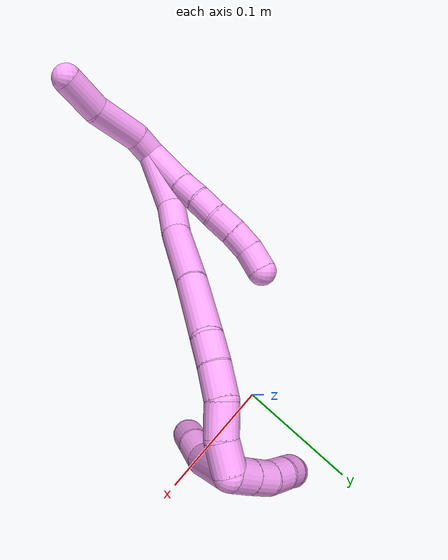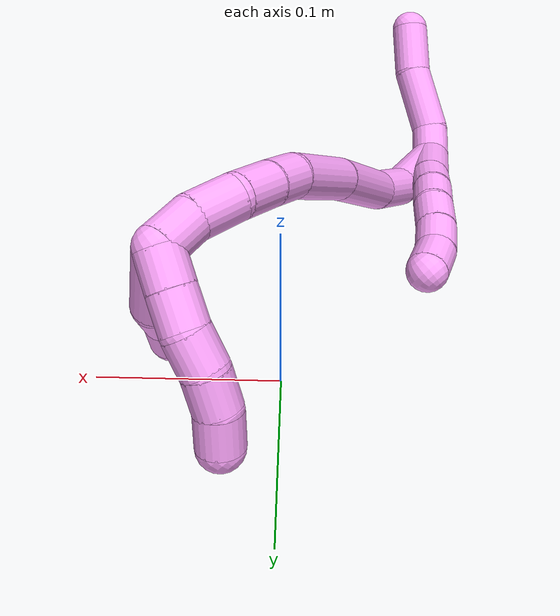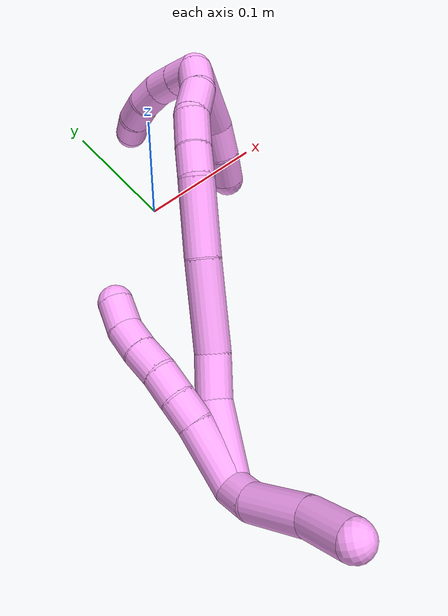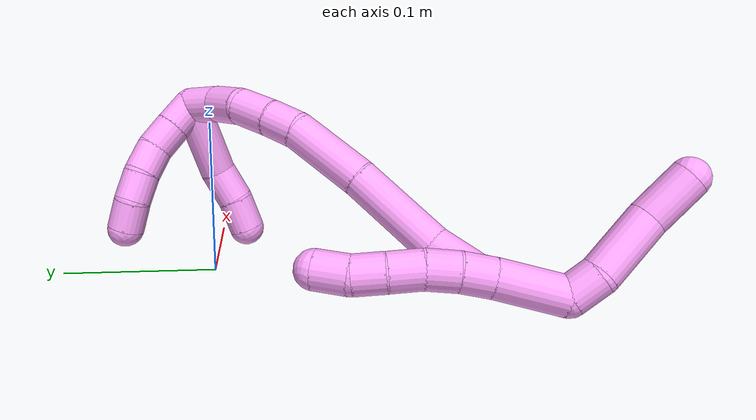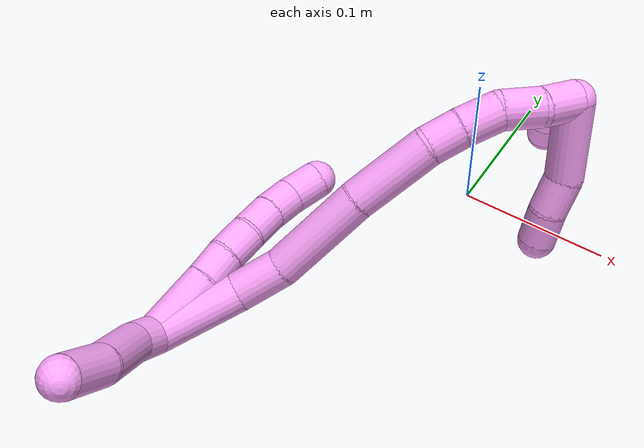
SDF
<sdf version="1.7">
 <world name="default">
  <model name="4">
   <static>0</static>
   <link name="4">
    <collision name="collision-cylinder-e_1_2_8">
     <pose>0.00853 0.019481 -0.007025 -1.9169 0.390709 -0.549188</pose>
     <geometry><cylinder><radius>0.0125</radius><length>0.044793</length></cylinder></geometry>
     <surface>
      <friction><ode><mu>1.16</mu><mu2>1.16</mu2><slip1>0</slip1><slip2>0</slip2></ode></friction>
      <contact><ode><kp>1e+06</kp><kd>1</kd><max_vel>0</max_vel><min_depth>0.001</min_depth></ode></contact>
     </surface>
    </collision>
    <visual name="visual-cylinder-e_1_2_8">
     <pose>0.00853 0.019481 -0.007025 -1.9169 0.390709 -0.549188</pose>
     <geometry><cylinder><radius>0.0125</radius><length>0.044793</length></cylinder></geometry>
     <material><ambient>1 0.65098 0.996078 1</ambient></material>
    </visual>
    <collision name="collision-cylinder-e_2_8_9">
     <pose>0.020588 0.047546 -0.018072 -2.00894 0.356377 -0.552068</pose>
     <geometry><cylinder><radius>0.0125</radius><length>0.02023</length></cylinder></geometry>
     <surface>
      <friction><ode><mu>1.16</mu><mu2>1.16</mu2><slip1>0</slip1><slip2>0</slip2></ode></friction>
      <contact><ode><kp>1e+06</kp><kd>1</kd><max_vel>0</max_vel><min_depth>0.001</min_depth></ode></contact>
     </surface>
    </collision>
    <visual name="visual-cylinder-e_2_8_9">
     <pose>0.020588 0.047546 -0.018072 -2.00894 0.356377 -0.552068</pose>
     <geometry><cylinder><radius>0.0125</radius><length>0.02023</length></cylinder></geometry>
     <material><ambient>1 0.65098 0.996078 1</ambient></material>
    </visual>
    <collision name="collision-cylinder-e_3_9_10">
     <pose>0.02866 0.064155 -0.0267 -2.09181 0.456402 -0.762845</pose>
     <geometry><cylinder><radius>0.0125</radius><length>0.020616</length></cylinder></geometry>
     <surface>
      <friction><ode><mu>1.16</mu><mu2>1.16</mu2><slip1>0</slip1><slip2>0</slip2></ode></friction>
      <contact><ode><kp>1e+06</kp><kd>1</kd><max_vel>0</max_vel><min_depth>0.001</min_depth></ode></contact>
     </surface>
    </collision>
    <visual name="visual-cylinder-e_3_9_10">
     <pose>0.02866 0.064155 -0.0267 -2.09181 0.456402 -0.762845</pose>
     <geometry><cylinder><radius>0.0125</radius><length>0.020616</length></cylinder></geometry>
     <material><ambient>1 0.65098 0.996078 1</ambient></material>
    </visual>
    <collision name="collision-cylinder-e_4_10_11">
     <pose>0.038178 0.079528 -0.037457 -2.26775 0.478846 -0.963257</pose>
     <geometry><cylinder><radius>0.0125</radius><length>0.021595</length></cylinder></geometry>
     <surface>
      <friction><ode><mu>1.16</mu><mu2>1.16</mu2><slip1>0</slip1><slip2>0</slip2></ode></friction>
      <contact><ode><kp>1e+06</kp><kd>1</kd><max_vel>0</max_vel><min_depth>0.001</min_depth></ode></contact>
     </surface>
    </collision>
    <visual name="visual-cylinder-e_4_10_11">
     <pose>0.038178 0.079528 -0.037457 -2.26775 0.478846 -0.963257</pose>
     <geometry><cylinder><radius>0.0125</radius><length>0.021595</length></cylinder></geometry>
     <material><ambient>1 0.65098 0.996078 1</ambient></material>
    </visual>
    <collision name="collision-cylinder-e_5_11_12">
     <pose>0.048782 0.09369 -0.048889 -2.23025 0.578439 -1.09137</pose>
     <geometry><cylinder><radius>0.0125</radius><length>0.02059</length></cylinder></geometry>
     <surface>
      <friction><ode><mu>1.16</mu><mu2>1.16</mu2><slip1>0</slip1><slip2>0</slip2></ode></friction>
      <contact><ode><kp>1e+06</kp><kd>1</kd><max_vel>0</max_vel><min_depth>0.001</min_depth></ode></contact>
     </surface>
    </collision>
    <visual name="visual-cylinder-e_5_11_12">
     <pose>0.048782 0.09369 -0.048889 -2.23025 0.578439 -1.09137</pose>
     <geometry><cylinder><radius>0.0125</radius><length>0.02059</length></cylinder></geometry>
     <material><ambient>1 0.65098 0.996078 1</ambient></material>
    </visual>
    <collision name="collision-cylinder-e_6_12_6">
     <pose>0.061118 0.108848 -0.05705 -1.90304 0.649804 -0.882885</pose>
     <geometry><cylinder><radius>0.0125</radius><length>0.022176</length></cylinder></geometry>
     <surface>
      <friction><ode><mu>1.16</mu><mu2>1.16</mu2><slip1>0</slip1><slip2>0</slip2></ode></friction>
      <contact><ode><kp>1e+06</kp><kd>1</kd><max_vel>0</max_vel><min_depth>0.001</min_depth></ode></contact>
     </surface>
    </collision>
    <visual name="visual-cylinder-e_6_12_6">
     <pose>0.061118 0.108848 -0.05705 -1.90304 0.649804 -0.882885</pose>
     <geometry><cylinder><radius>0.0125</radius><length>0.022176</length></cylinder></geometry>
     <material><ambient>1 0.65098 0.996078 1</ambient></material>
    </visual>
    <collision name="collision-cylinder-e_1_2_13">
     <pose>-0.006725 -0.001864 0.008014 0.228531 -0.685218 -0.081822</pose>
     <geometry><cylinder><radius>0.0125</radius><length>0.021254</length></cylinder></geometry>
     <surface>
      <friction><ode><mu>1.16</mu><mu2>1.16</mu2><slip1>0</slip1><slip2>0</slip2></ode></friction>
      <contact><ode><kp>1e+06</kp><kd>1</kd><max_vel>0</max_vel><min_depth>0.001</min_depth></ode></contact>
     </surface>
    </collision>
    <visual name="visual-cylinder-e_1_2_13">
     <pose>-0.006725 -0.001864 0.008014 0.228531 -0.685218 -0.081822</pose>
     <geometry><cylinder><radius>0.0125</radius><length>0.021254</length></cylinder></geometry>
     <material><ambient>1 0.65098 0.996078 1</ambient></material>
    </visual>
    <collision name="collision-cylinder-e_2_13_14">
     <pose>-0.022684 -0.004671 0.036239 0.046617 -0.42814 -0.010136</pose>
     <geometry><cylinder><radius>0.0125</radius><length>0.04448</length></cylinder></geometry>
     <surface>
      <friction><ode><mu>1.16</mu><mu2>1.16</mu2><slip1>0</slip1><slip2>0</slip2></ode></friction>
      <contact><ode><kp>1e+06</kp><kd>1</kd><max_vel>0</max_vel><min_depth>0.001</min_depth></ode></contact>
     </surface>
    </collision>
    <visual name="visual-cylinder-e_2_13_14">
     <pose>-0.022684 -0.004671 0.036239 0.046617 -0.42814 -0.010136</pose>
     <geometry><cylinder><radius>0.0125</radius><length>0.04448</length></cylinder></geometry>
     <material><ambient>1 0.65098 0.996078 1</ambient></material>
    </visual>
    <collision name="collision-cylinder-e_3_14_5">
     <pose>-0.042203 -0.006354 0.070132 0.054046 -0.64393 -0.018032</pose>
     <geometry><cylinder><radius>0.0125</radius><length>0.034266</length></cylinder></geometry>
     <surface>
      <friction><ode><mu>1.16</mu><mu2>1.16</mu2><slip1>0</slip1><slip2>0</slip2></ode></friction>
      <contact><ode><kp>1e+06</kp><kd>1</kd><max_vel>0</max_vel><min_depth>0.001</min_depth></ode></contact>
     </surface>
    </collision>
    <visual name="visual-cylinder-e_3_14_5">
     <pose>-0.042203 -0.006354 0.070132 0.054046 -0.64393 -0.018032</pose>
     <geometry><cylinder><radius>0.0125</radius><length>0.034266</length></cylinder></geometry>
     <material><ambient>1 0.65098 0.996078 1</ambient></material>
    </visual>
    <collision name="collision-cylinder-e_1_2_15">
     <pose>0.018362 0.020421 -0.002941 -1.71382 0.727236 -0.827785</pose>
     <geometry><cylinder><radius>0.0125</radius><length>0.055239</length></cylinder></geometry>
     <surface>
      <friction><ode><mu>1.16</mu><mu2>1.16</mu2><slip1>0</slip1><slip2>0</slip2></ode></friction>
      <contact><ode><kp>1e+06</kp><kd>1</kd><max_vel>0</max_vel><min_depth>0.001</min_depth></ode></contact>
     </surface>
    </collision>
    <visual name="visual-cylinder-e_1_2_15">
     <pose>0.018362 0.020421 -0.002941 -1.71382 0.727236 -0.827785</pose>
     <geometry><cylinder><radius>0.0125</radius><length>0.055239</length></cylinder></geometry>
     <material><ambient>1 0.65098 0.996078 1</ambient></material>
    </visual>
    <collision name="collision-cylinder-e_2_15_16">
     <pose>0.045155 0.054078 -0.003023 -1.35805 0.556942 -0.453532</pose>
     <geometry><cylinder><radius>0.0125</radius><length>0.031902</length></cylinder></geometry>
     <surface>
      <friction><ode><mu>1.16</mu><mu2>1.16</mu2><slip1>0</slip1><slip2>0</slip2></ode></friction>
      <contact><ode><kp>1e+06</kp><kd>1</kd><max_vel>0</max_vel><min_depth>0.001</min_depth></ode></contact>
     </surface>
    </collision>
    <visual name="visual-cylinder-e_2_15_16">
     <pose>0.045155 0.054078 -0.003023 -1.35805 0.556942 -0.453532</pose>
     <geometry><cylinder><radius>0.0125</radius><length>0.031902</length></cylinder></geometry>
     <material><ambient>1 0.65098 0.996078 1</ambient></material>
    </visual>
    <collision name="collision-cylinder-e_3_16_17">
     <pose>0.063574 0.096447 0.006567 -1.34376 0.32238 -0.257212</pose>
     <geometry><cylinder><radius>0.0125</radius><length>0.063051</length></cylinder></geometry>
     <surface>
      <friction><ode><mu>1.16</mu><mu2>1.16</mu2><slip1>0</slip1><slip2>0</slip2></ode></friction>
      <contact><ode><kp>1e+06</kp><kd>1</kd><max_vel>0</max_vel><min_depth>0.001</min_depth></ode></contact>
     </surface>
    </collision>
    <visual name="visual-cylinder-e_3_16_17">
     <pose>0.063574 0.096447 0.006567 -1.34376 0.32238 -0.257212</pose>
     <geometry><cylinder><radius>0.0125</radius><length>0.063051</length></cylinder></geometry>
     <material><ambient>1 0.65098 0.996078 1</ambient></material>
    </visual>
    <collision name="collision-cylinder-e_4_17_18">
     <pose>0.084428 0.149228 0.018316 -1.36163 0.422419 -0.343915</pose>
     <geometry><cylinder><radius>0.0125</radius><length>0.053006</length></cylinder></geometry>
     <surface>
      <friction><ode><mu>1.16</mu><mu2>1.16</mu2><slip1>0</slip1><slip2>0</slip2></ode></friction>
      <contact><ode><kp>1e+06</kp><kd>1</kd><max_vel>0</max_vel><min_depth>0.001</min_depth></ode></contact>
     </surface>
    </collision>
    <visual name="visual-cylinder-e_4_17_18">
     <pose>0.084428 0.149228 0.018316 -1.36163 0.422419 -0.343915</pose>
     <geometry><cylinder><radius>0.0125</radius><length>0.053006</length></cylinder></geometry>
     <material><ambient>1 0.65098 0.996078 1</ambient></material>
    </visual>
    <collision name="collision-cylinder-e_5_18_19">
     <pose>0.101738 0.181714 0.02414 -1.4801 0.627996 -0.576575</pose>
     <geometry><cylinder><radius>0.0125</radius><length>0.021938</length></cylinder></geometry>
     <surface>
      <friction><ode><mu>1.16</mu><mu2>1.16</mu2><slip1>0</slip1><slip2>0</slip2></ode></friction>
      <contact><ode><kp>1e+06</kp><kd>1</kd><max_vel>0</max_vel><min_depth>0.001</min_depth></ode></contact>
     </surface>
    </collision>
    <visual name="visual-cylinder-e_5_18_19">
     <pose>0.101738 0.181714 0.02414 -1.4801 0.627996 -0.576575</pose>
     <geometry><cylinder><radius>0.0125</radius><length>0.021938</length></cylinder></geometry>
     <material><ambient>1 0.65098 0.996078 1</ambient></material>
    </visual>
    <collision name="collision-cylinder-e_6_19_20">
     <pose>0.116521 0.200245 0.025874 -1.47504 0.708243 -0.648111</pose>
     <geometry><cylinder><radius>0.0125</radius><length>0.025637</length></cylinder></geometry>
     <surface>
      <friction><ode><mu>1.16</mu><mu2>1.16</mu2><slip1>0</slip1><slip2>0</slip2></ode></friction>
      <contact><ode><kp>1e+06</kp><kd>1</kd><max_vel>0</max_vel><min_depth>0.001</min_depth></ode></contact>
     </surface>
    </collision>
    <visual name="visual-cylinder-e_6_19_20">
     <pose>0.116521 0.200245 0.025874 -1.47504 0.708243 -0.648111</pose>
     <geometry><cylinder><radius>0.0125</radius><length>0.025637</length></cylinder></geometry>
     <material><ambient>1 0.65098 0.996078 1</ambient></material>
    </visual>
    <collision name="collision-cylinder-e_7_20_21">
     <pose>0.135951 0.216258 0.02837 -1.32816 1.03981 -0.84242</pose>
     <geometry><cylinder><radius>0.0125</radius><length>0.025726</length></cylinder></geometry>
     <surface>
      <friction><ode><mu>1.16</mu><mu2>1.16</mu2><slip1>0</slip1><slip2>0</slip2></ode></friction>
      <contact><ode><kp>1e+06</kp><kd>1</kd><max_vel>0</max_vel><min_depth>0.001</min_depth></ode></contact>
     </surface>
    </collision>
    <visual name="visual-cylinder-e_7_20_21">
     <pose>0.135951 0.216258 0.02837 -1.32816 1.03981 -0.84242</pose>
     <geometry><cylinder><radius>0.0125</radius><length>0.025726</length></cylinder></geometry>
     <material><ambient>1 0.65098 0.996078 1</ambient></material>
    </visual>
    <collision name="collision-cylinder-e_8_21_1">
     <pose>0.156734 0.228992 0.028185 -1.83724 0.969762 -1.20782</pose>
     <geometry><cylinder><radius>0.0125</radius><length>0.023502</length></cylinder></geometry>
     <surface>
      <friction><ode><mu>1.16</mu><mu2>1.16</mu2><slip1>0</slip1><slip2>0</slip2></ode></friction>
      <contact><ode><kp>1e+06</kp><kd>1</kd><max_vel>0</max_vel><min_depth>0.001</min_depth></ode></contact>
     </surface>
    </collision>
    <visual name="visual-cylinder-e_8_21_1">
     <pose>0.156734 0.228992 0.028185 -1.83724 0.969762 -1.20782</pose>
     <geometry><cylinder><radius>0.0125</radius><length>0.023502</length></cylinder></geometry>
     <material><ambient>1 0.65098 0.996078 1</ambient></material>
    </visual>
    <collision name="collision-cylinder-e_1_1_22">
     <pose>0.178684 0.212995 0.020552 1.82761 0.48668 0.6228</pose>
     <geometry><cylinder><radius>0.0125</radius><length>0.05242</length></cylinder></geometry>
     <surface>
      <friction><ode><mu>1.16</mu><mu2>1.16</mu2><slip1>0</slip1><slip2>0</slip2></ode></friction>
      <contact><ode><kp>1e+06</kp><kd>1</kd><max_vel>0</max_vel><min_depth>0.001</min_depth></ode></contact>
     </surface>
    </collision>
    <visual name="visual-cylinder-e_1_1_22">
     <pose>0.178684 0.212995 0.020552 1.82761 0.48668 0.6228</pose>
     <geometry><cylinder><radius>0.0125</radius><length>0.05242</length></cylinder></geometry>
     <material><ambient>1 0.65098 0.996078 1</ambient></material>
    </visual>
    <collision name="collision-cylinder-e_2_22_23">
     <pose>0.19295 0.178926 0.011656 1.82346 0.165181 0.212923</pose>
     <geometry><cylinder><radius>0.0125</radius><length>0.024421</length></cylinder></geometry>
     <surface>
      <friction><ode><mu>1.16</mu><mu2>1.16</mu2><slip1>0</slip1><slip2>0</slip2></ode></friction>
      <contact><ode><kp>1e+06</kp><kd>1</kd><max_vel>0</max_vel><min_depth>0.001</min_depth></ode></contact>
     </surface>
    </collision>
    <visual name="visual-cylinder-e_2_22_23">
     <pose>0.19295 0.178926 0.011656 1.82346 0.165181 0.212923</pose>
     <geometry><cylinder><radius>0.0125</radius><length>0.024421</length></cylinder></geometry>
     <material><ambient>1 0.65098 0.996078 1</ambient></material>
    </visual>
    <collision name="collision-cylinder-e_3_23_4">
     <pose>0.198518 0.156932 0.004817 1.92568 0.312484 0.445234</pose>
     <geometry><cylinder><radius>0.0125</radius><length>0.023159</length></cylinder></geometry>
     <surface>
      <friction><ode><mu>1.16</mu><mu2>1.16</mu2><slip1>0</slip1><slip2>0</slip2></ode></friction>
      <contact><ode><kp>1e+06</kp><kd>1</kd><max_vel>0</max_vel><min_depth>0.001</min_depth></ode></contact>
     </surface>
    </collision>
    <visual name="visual-cylinder-e_3_23_4">
     <pose>0.198518 0.156932 0.004817 1.92568 0.312484 0.445234</pose>
     <geometry><cylinder><radius>0.0125</radius><length>0.023159</length></cylinder></geometry>
     <material><ambient>1 0.65098 0.996078 1</ambient></material>
    </visual>
    <collision name="collision-cylinder-e_1_1_24">
     <pose>0.17003 0.235193 0.01711 3.11913 0.368719 3.02126</pose>
     <geometry><cylinder><radius>0.0125</radius><length>0.02</length></cylinder></geometry>
     <surface>
      <friction><ode><mu>1.16</mu><mu2>1.16</mu2><slip1>0</slip1><slip2>0</slip2></ode></friction>
      <contact><ode><kp>1e+06</kp><kd>1</kd><max_vel>0</max_vel><min_depth>0.001</min_depth></ode></contact>
     </surface>
    </collision>
    <visual name="visual-cylinder-e_1_1_24">
     <pose>0.17003 0.235193 0.01711 3.11913 0.368719 3.02126</pose>
     <geometry><cylinder><radius>0.0125</radius><length>0.02</length></cylinder></geometry>
     <material><ambient>1 0.65098 0.996078 1</ambient></material>
    </visual>
    <collision name="collision-cylinder-e_2_24_25">
     <pose>0.177092 0.234545 -0.001588 3.09491 0.35303 2.88133</pose>
     <geometry><cylinder><radius>0.0125</radius><length>0.02</length></cylinder></geometry>
     <surface>
      <friction><ode><mu>1.16</mu><mu2>1.16</mu2><slip1>0</slip1><slip2>0</slip2></ode></friction>
      <contact><ode><kp>1e+06</kp><kd>1</kd><max_vel>0</max_vel><min_depth>0.001</min_depth></ode></contact>
     </surface>
    </collision>
    <visual name="visual-cylinder-e_2_24_25">
     <pose>0.177092 0.234545 -0.001588 3.09491 0.35303 2.88133</pose>
     <geometry><cylinder><radius>0.0125</radius><length>0.02</length></cylinder></geometry>
     <material><ambient>1 0.65098 0.996078 1</ambient></material>
    </visual>
    <collision name="collision-cylinder-e_3_25_26">
     <pose>0.182867 0.231548 -0.020346 2.87533 0.233916 1.44028</pose>
     <geometry><cylinder><radius>0.0125</radius><length>0.02</length></cylinder></geometry>
     <surface>
      <friction><ode><mu>1.16</mu><mu2>1.16</mu2><slip1>0</slip1><slip2>0</slip2></ode></friction>
      <contact><ode><kp>1e+06</kp><kd>1</kd><max_vel>0</max_vel><min_depth>0.001</min_depth></ode></contact>
     </surface>
    </collision>
    <visual name="visual-cylinder-e_3_25_26">
     <pose>0.182867 0.231548 -0.020346 2.87533 0.233916 1.44028</pose>
     <geometry><cylinder><radius>0.0125</radius><length>0.02</length></cylinder></geometry>
     <material><ambient>1 0.65098 0.996078 1</ambient></material>
    </visual>
    <collision name="collision-cylinder-e_4_26_27">
     <pose>0.188935 0.225047 -0.038122 2.70251 0.384432 1.43447</pose>
     <geometry><cylinder><radius>0.0125</radius><length>0.02</length></cylinder></geometry>
     <surface>
      <friction><ode><mu>1.16</mu><mu2>1.16</mu2><slip1>0</slip1><slip2>0</slip2></ode></friction>
      <contact><ode><kp>1e+06</kp><kd>1</kd><max_vel>0</max_vel><min_depth>0.001</min_depth></ode></contact>
     </surface>
    </collision>
    <visual name="visual-cylinder-e_4_26_27">
     <pose>0.188935 0.225047 -0.038122 2.70251 0.384432 1.43447</pose>
     <geometry><cylinder><radius>0.0125</radius><length>0.02</length></cylinder></geometry>
     <material><ambient>1 0.65098 0.996078 1</ambient></material>
    </visual>
    <collision name="collision-cylinder-e_5_27_3">
     <pose>0.198371 0.216493 -0.053323 2.54616 0.604767 1.58733</pose>
     <geometry><cylinder><radius>0.0125</radius><length>0.02</length></cylinder></geometry>
     <surface>
      <friction><ode><mu>1.16</mu><mu2>1.16</mu2><slip1>0</slip1><slip2>0</slip2></ode></friction>
      <contact><ode><kp>1e+06</kp><kd>1</kd><max_vel>0</max_vel><min_depth>0.001</min_depth></ode></contact>
     </surface>
    </collision>
    <visual name="visual-cylinder-e_5_27_3">
     <pose>0.198371 0.216493 -0.053323 2.54616 0.604767 1.58733</pose>
     <geometry><cylinder><radius>0.0125</radius><length>0.02</length></cylinder></geometry>
     <material><ambient>1 0.65098 0.996078 1</ambient></material>
    </visual>
    <collision name="collision-sphere-3">
     <pose>0.204057 0.211879 -0.060134 0 -0 0</pose>
     <geometry><sphere><radius>0.0125</radius></sphere></geometry>
     <surface>
      <friction><ode><mu>1.16</mu><mu2>1.16</mu2><slip1>0</slip1><slip2>0</slip2></ode></friction>
      <contact><ode><kp>1e+06</kp><kd>1</kd><max_vel>0</max_vel><min_depth>0.001</min_depth></ode></contact>
     </surface>
    </collision>
    <visual name="visual-sphere-3">
     <pose>0.204057 0.211879 -0.060134 0 -0 0</pose>
     <geometry><sphere><radius>0.0125</radius></sphere></geometry>
     <material><ambient>1 0.65098 0.996078 1</ambient></material>
    </visual>
    <collision name="collision-sphere-27">
     <pose>0.192686 0.221107 -0.046513 0 -0 0</pose>
     <geometry><sphere><radius>0.0125</radius></sphere></geometry>
     <surface>
      <friction><ode><mu>1.16</mu><mu2>1.16</mu2><slip1>0</slip1><slip2>0</slip2></ode></friction>
      <contact><ode><kp>1e+06</kp><kd>1</kd><max_vel>0</max_vel><min_depth>0.001</min_depth></ode></contact>
     </surface>
    </collision>
    <visual name="visual-sphere-27">
     <pose>0.192686 0.221107 -0.046513 0 -0 0</pose>
     <geometry><sphere><radius>0.0125</radius></sphere></geometry>
     <material><ambient>1 0.65098 0.996078 1</ambient></material>
    </visual>
    <collision name="collision-sphere-26">
     <pose>0.185185 0.228988 -0.029731 0 -0 0</pose>
     <geometry><sphere><radius>0.0125</radius></sphere></geometry>
     <surface>
      <friction><ode><mu>1.16</mu><mu2>1.16</mu2><slip1>0</slip1><slip2>0</slip2></ode></friction>
      <contact><ode><kp>1e+06</kp><kd>1</kd><max_vel>0</max_vel><min_depth>0.001</min_depth></ode></contact>
     </surface>
    </collision>
    <visual name="visual-sphere-26">
     <pose>0.185185 0.228988 -0.029731 0 -0 0</pose>
     <geometry><sphere><radius>0.0125</radius></sphere></geometry>
     <material><ambient>1 0.65098 0.996078 1</ambient></material>
    </visual>
    <collision name="collision-sphere-25">
     <pose>0.180549 0.234108 -0.010961 0 -0 0</pose>
     <geometry><sphere><radius>0.0125</radius></sphere></geometry>
     <surface>
      <friction><ode><mu>1.16</mu><mu2>1.16</mu2><slip1>0</slip1><slip2>0</slip2></ode></friction>
      <contact><ode><kp>1e+06</kp><kd>1</kd><max_vel>0</max_vel><min_depth>0.001</min_depth></ode></contact>
     </surface>
    </collision>
    <visual name="visual-sphere-25">
     <pose>0.180549 0.234108 -0.010961 0 -0 0</pose>
     <geometry><sphere><radius>0.0125</radius></sphere></geometry>
     <material><ambient>1 0.65098 0.996078 1</ambient></material>
    </visual>
    <collision name="collision-sphere-24">
     <pose>0.173634 0.234983 0.007785 0 -0 0</pose>
     <geometry><sphere><radius>0.0125</radius></sphere></geometry>
     <surface>
      <friction><ode><mu>1.16</mu><mu2>1.16</mu2><slip1>0</slip1><slip2>0</slip2></ode></friction>
      <contact><ode><kp>1e+06</kp><kd>1</kd><max_vel>0</max_vel><min_depth>0.001</min_depth></ode></contact>
     </surface>
    </collision>
    <visual name="visual-sphere-24">
     <pose>0.173634 0.234983 0.007785 0 -0 0</pose>
     <geometry><sphere><radius>0.0125</radius></sphere></geometry>
     <material><ambient>1 0.65098 0.996078 1</ambient></material>
    </visual>
    <collision name="collision-sphere-4">
     <pose>0.202078 0.1466 0.000988 0 -0 0</pose>
     <geometry><sphere><radius>0.0125</radius></sphere></geometry>
     <surface>
      <friction><ode><mu>1.16</mu><mu2>1.16</mu2><slip1>0</slip1><slip2>0</slip2></ode></friction>
      <contact><ode><kp>1e+06</kp><kd>1</kd><max_vel>0</max_vel><min_depth>0.001</min_depth></ode></contact>
     </surface>
    </collision>
    <visual name="visual-sphere-4">
     <pose>0.202078 0.1466 0.000988 0 -0 0</pose>
     <geometry><sphere><radius>0.0125</radius></sphere></geometry>
     <material><ambient>1 0.65098 0.996078 1</ambient></material>
    </visual>
    <collision name="collision-sphere-23">
     <pose>0.194958 0.167265 0.008646 0 -0 0</pose>
     <geometry><sphere><radius>0.0125</radius></sphere></geometry>
     <surface>
      <friction><ode><mu>1.16</mu><mu2>1.16</mu2><slip1>0</slip1><slip2>0</slip2></ode></friction>
      <contact><ode><kp>1e+06</kp><kd>1</kd><max_vel>0</max_vel><min_depth>0.001</min_depth></ode></contact>
     </surface>
    </collision>
    <visual name="visual-sphere-23">
     <pose>0.194958 0.167265 0.008646 0 -0 0</pose>
     <geometry><sphere><radius>0.0125</radius></sphere></geometry>
     <material><ambient>1 0.65098 0.996078 1</ambient></material>
    </visual>
    <collision name="collision-sphere-22">
     <pose>0.190942 0.190588 0.014667 0 -0 0</pose>
     <geometry><sphere><radius>0.0125</radius></sphere></geometry>
     <surface>
      <friction><ode><mu>1.16</mu><mu2>1.16</mu2><slip1>0</slip1><slip2>0</slip2></ode></friction>
      <contact><ode><kp>1e+06</kp><kd>1</kd><max_vel>0</max_vel><min_depth>0.001</min_depth></ode></contact>
     </surface>
    </collision>
    <visual name="visual-sphere-22">
     <pose>0.190942 0.190588 0.014667 0 -0 0</pose>
     <geometry><sphere><radius>0.0125</radius></sphere></geometry>
     <material><ambient>1 0.65098 0.996078 1</ambient></material>
    </visual>
    <collision name="collision-sphere-1">
     <pose>0.166426 0.235402 0.026436 0 -0 0</pose>
     <geometry><sphere><radius>0.0125</radius></sphere></geometry>
     <surface>
      <friction><ode><mu>1.16</mu><mu2>1.16</mu2><slip1>0</slip1><slip2>0</slip2></ode></friction>
      <contact><ode><kp>1e+06</kp><kd>1</kd><max_vel>0</max_vel><min_depth>0.001</min_depth></ode></contact>
     </surface>
    </collision>
    <visual name="visual-sphere-1">
     <pose>0.166426 0.235402 0.026436 0 -0 0</pose>
     <geometry><sphere><radius>0.0125</radius></sphere></geometry>
     <material><ambient>1 0.65098 0.996078 1</ambient></material>
    </visual>
    <collision name="collision-sphere-21">
     <pose>0.147043 0.222581 0.029935 0 -0 0</pose>
     <geometry><sphere><radius>0.0125</radius></sphere></geometry>
     <surface>
      <friction><ode><mu>1.16</mu><mu2>1.16</mu2><slip1>0</slip1><slip2>0</slip2></ode></friction>
      <contact><ode><kp>1e+06</kp><kd>1</kd><max_vel>0</max_vel><min_depth>0.001</min_depth></ode></contact>
     </surface>
    </collision>
    <visual name="visual-sphere-21">
     <pose>0.147043 0.222581 0.029935 0 -0 0</pose>
     <geometry><sphere><radius>0.0125</radius></sphere></geometry>
     <material><ambient>1 0.65098 0.996078 1</ambient></material>
    </visual>
    <collision name="collision-sphere-12">
     <pose>0.05441 0.100502 -0.054171 0 -0 0</pose>
     <geometry><sphere><radius>0.0125</radius></sphere></geometry>
     <surface>
      <friction><ode><mu>1.16</mu><mu2>1.16</mu2><slip1>0</slip1><slip2>0</slip2></ode></friction>
      <contact><ode><kp>1e+06</kp><kd>1</kd><max_vel>0</max_vel><min_depth>0.001</min_depth></ode></contact>
     </surface>
    </collision>
    <visual name="visual-sphere-12">
     <pose>0.05441 0.100502 -0.054171 0 -0 0</pose>
     <geometry><sphere><radius>0.0125</radius></sphere></geometry>
     <material><ambient>1 0.65098 0.996078 1</ambient></material>
    </visual>
    <collision name="collision-sphere-11">
     <pose>0.043153 0.086877 -0.043608 0 -0 0</pose>
     <geometry><sphere><radius>0.0125</radius></sphere></geometry>
     <surface>
      <friction><ode><mu>1.16</mu><mu2>1.16</mu2><slip1>0</slip1><slip2>0</slip2></ode></friction>
      <contact><ode><kp>1e+06</kp><kd>1</kd><max_vel>0</max_vel><min_depth>0.001</min_depth></ode></contact>
     </surface>
    </collision>
    <visual name="visual-sphere-11">
     <pose>0.043153 0.086877 -0.043608 0 -0 0</pose>
     <geometry><sphere><radius>0.0125</radius></sphere></geometry>
     <material><ambient>1 0.65098 0.996078 1</ambient></material>
    </visual>
    <collision name="collision-sphere-10">
     <pose>0.033203 0.07218 -0.031305 0 -0 0</pose>
     <geometry><sphere><radius>0.0125</radius></sphere></geometry>
     <surface>
      <friction><ode><mu>1.16</mu><mu2>1.16</mu2><slip1>0</slip1><slip2>0</slip2></ode></friction>
      <contact><ode><kp>1e+06</kp><kd>1</kd><max_vel>0</max_vel><min_depth>0.001</min_depth></ode></contact>
     </surface>
    </collision>
    <visual name="visual-sphere-10">
     <pose>0.033203 0.07218 -0.031305 0 -0 0</pose>
     <geometry><sphere><radius>0.0125</radius></sphere></geometry>
     <material><ambient>1 0.65098 0.996078 1</ambient></material>
    </visual>
    <collision name="collision-sphere-9">
     <pose>0.024117 0.05613 -0.022094 0 -0 0</pose>
     <geometry><sphere><radius>0.0125</radius></sphere></geometry>
     <surface>
      <friction><ode><mu>1.16</mu><mu2>1.16</mu2><slip1>0</slip1><slip2>0</slip2></ode></friction>
      <contact><ode><kp>1e+06</kp><kd>1</kd><max_vel>0</max_vel><min_depth>0.001</min_depth></ode></contact>
     </surface>
    </collision>
    <visual name="visual-sphere-9">
     <pose>0.024117 0.05613 -0.022094 0 -0 0</pose>
     <geometry><sphere><radius>0.0125</radius></sphere></geometry>
     <material><ambient>1 0.65098 0.996078 1</ambient></material>
    </visual>
    <collision name="collision-sphere-2">
     <geometry><sphere><radius>0.0125</radius></sphere></geometry>
     <surface>
      <friction><ode><mu>1.16</mu><mu2>1.16</mu2><slip1>0</slip1><slip2>0</slip2></ode></friction>
      <contact><ode><kp>1e+06</kp><kd>1</kd><max_vel>0</max_vel><min_depth>0.001</min_depth></ode></contact>
     </surface>
    </collision>
    <visual name="visual-sphere-2">
     <geometry><sphere><radius>0.0125</radius></sphere></geometry>
     <material><ambient>1 0.65098 0.996078 1</ambient></material>
    </visual>
    <collision name="collision-sphere-19">
     <pose>0.108182 0.190554 0.024944 0 -0 0</pose>
     <geometry><sphere><radius>0.0125</radius></sphere></geometry>
     <surface>
      <friction><ode><mu>1.16</mu><mu2>1.16</mu2><slip1>0</slip1><slip2>0</slip2></ode></friction>
      <contact><ode><kp>1e+06</kp><kd>1</kd><max_vel>0</max_vel><min_depth>0.001</min_depth></ode></contact>
     </surface>
    </collision>
    <visual name="visual-sphere-19">
     <pose>0.108182 0.190554 0.024944 0 -0 0</pose>
     <geometry><sphere><radius>0.0125</radius></sphere></geometry>
     <material><ambient>1 0.65098 0.996078 1</ambient></material>
    </visual>
    <collision name="collision-sphere-8">
     <pose>0.017059 0.038962 -0.01405 0 -0 0</pose>
     <geometry><sphere><radius>0.0125</radius></sphere></geometry>
     <surface>
      <friction><ode><mu>1.16</mu><mu2>1.16</mu2><slip1>0</slip1><slip2>0</slip2></ode></friction>
      <contact><ode><kp>1e+06</kp><kd>1</kd><max_vel>0</max_vel><min_depth>0.001</min_depth></ode></contact>
     </surface>
    </collision>
    <visual name="visual-sphere-8">
     <pose>0.017059 0.038962 -0.01405 0 -0 0</pose>
     <geometry><sphere><radius>0.0125</radius></sphere></geometry>
     <material><ambient>1 0.65098 0.996078 1</ambient></material>
    </visual>
    <collision name="collision-sphere-6">
     <pose>0.067827 0.117193 -0.059929 0 -0 0</pose>
     <geometry><sphere><radius>0.0125</radius></sphere></geometry>
     <surface>
      <friction><ode><mu>1.16</mu><mu2>1.16</mu2><slip1>0</slip1><slip2>0</slip2></ode></friction>
      <contact><ode><kp>1e+06</kp><kd>1</kd><max_vel>0</max_vel><min_depth>0.001</min_depth></ode></contact>
     </surface>
    </collision>
    <visual name="visual-sphere-6">
     <pose>0.067827 0.117193 -0.059929 0 -0 0</pose>
     <geometry><sphere><radius>0.0125</radius></sphere></geometry>
     <material><ambient>1 0.65098 0.996078 1</ambient></material>
    </visual>
    <collision name="collision-sphere-13">
     <pose>-0.01345 -0.003728 0.016029 0 -0 0</pose>
     <geometry><sphere><radius>0.0125</radius></sphere></geometry>
     <surface>
      <friction><ode><mu>1.16</mu><mu2>1.16</mu2><slip1>0</slip1><slip2>0</slip2></ode></friction>
      <contact><ode><kp>1e+06</kp><kd>1</kd><max_vel>0</max_vel><min_depth>0.001</min_depth></ode></contact>
     </surface>
    </collision>
    <visual name="visual-sphere-13">
     <pose>-0.01345 -0.003728 0.016029 0 -0 0</pose>
     <geometry><sphere><radius>0.0125</radius></sphere></geometry>
     <material><ambient>1 0.65098 0.996078 1</ambient></material>
    </visual>
    <collision name="collision-sphere-14">
     <pose>-0.031918 -0.005614 0.05645 0 -0 0</pose>
     <geometry><sphere><radius>0.0125</radius></sphere></geometry>
     <surface>
      <friction><ode><mu>1.16</mu><mu2>1.16</mu2><slip1>0</slip1><slip2>0</slip2></ode></friction>
      <contact><ode><kp>1e+06</kp><kd>1</kd><max_vel>0</max_vel><min_depth>0.001</min_depth></ode></contact>
     </surface>
    </collision>
    <visual name="visual-sphere-14">
     <pose>-0.031918 -0.005614 0.05645 0 -0 0</pose>
     <geometry><sphere><radius>0.0125</radius></sphere></geometry>
     <material><ambient>1 0.65098 0.996078 1</ambient></material>
    </visual>
    <collision name="collision-sphere-5">
     <pose>-0.052489 -0.007094 0.083814 0 -0 0</pose>
     <geometry><sphere><radius>0.0125</radius></sphere></geometry>
     <surface>
      <friction><ode><mu>1.16</mu><mu2>1.16</mu2><slip1>0</slip1><slip2>0</slip2></ode></friction>
      <contact><ode><kp>1e+06</kp><kd>1</kd><max_vel>0</max_vel><min_depth>0.001</min_depth></ode></contact>
     </surface>
    </collision>
    <visual name="visual-sphere-5">
     <pose>-0.052489 -0.007094 0.083814 0 -0 0</pose>
     <geometry><sphere><radius>0.0125</radius></sphere></geometry>
     <material><ambient>1 0.65098 0.996078 1</ambient></material>
    </visual>
    <collision name="collision-sphere-15">
     <pose>0.036723 0.040843 -0.005882 0 -0 0</pose>
     <geometry><sphere><radius>0.0125</radius></sphere></geometry>
     <surface>
      <friction><ode><mu>1.16</mu><mu2>1.16</mu2><slip1>0</slip1><slip2>0</slip2></ode></friction>
      <contact><ode><kp>1e+06</kp><kd>1</kd><max_vel>0</max_vel><min_depth>0.001</min_depth></ode></contact>
     </surface>
    </collision>
    <visual name="visual-sphere-15">
     <pose>0.036723 0.040843 -0.005882 0 -0 0</pose>
     <geometry><sphere><radius>0.0125</radius></sphere></geometry>
     <material><ambient>1 0.65098 0.996078 1</ambient></material>
    </visual>
    <collision name="collision-sphere-16">
     <pose>0.053586 0.067313 -0.000164 0 -0 0</pose>
     <geometry><sphere><radius>0.0125</radius></sphere></geometry>
     <surface>
      <friction><ode><mu>1.16</mu><mu2>1.16</mu2><slip1>0</slip1><slip2>0</slip2></ode></friction>
      <contact><ode><kp>1e+06</kp><kd>1</kd><max_vel>0</max_vel><min_depth>0.001</min_depth></ode></contact>
     </surface>
    </collision>
    <visual name="visual-sphere-16">
     <pose>0.053586 0.067313 -0.000164 0 -0 0</pose>
     <geometry><sphere><radius>0.0125</radius></sphere></geometry>
     <material><ambient>1 0.65098 0.996078 1</ambient></material>
    </visual>
    <collision name="collision-sphere-17">
     <pose>0.073562 0.125581 0.013297 0 -0 0</pose>
     <geometry><sphere><radius>0.0125</radius></sphere></geometry>
     <surface>
      <friction><ode><mu>1.16</mu><mu2>1.16</mu2><slip1>0</slip1><slip2>0</slip2></ode></friction>
      <contact><ode><kp>1e+06</kp><kd>1</kd><max_vel>0</max_vel><min_depth>0.001</min_depth></ode></contact>
     </surface>
    </collision>
    <visual name="visual-sphere-17">
     <pose>0.073562 0.125581 0.013297 0 -0 0</pose>
     <geometry><sphere><radius>0.0125</radius></sphere></geometry>
     <material><ambient>1 0.65098 0.996078 1</ambient></material>
    </visual>
    <collision name="collision-sphere-18">
     <pose>0.095293 0.172874 0.023336 0 -0 0</pose>
     <geometry><sphere><radius>0.0125</radius></sphere></geometry>
     <surface>
      <friction><ode><mu>1.16</mu><mu2>1.16</mu2><slip1>0</slip1><slip2>0</slip2></ode></friction>
      <contact><ode><kp>1e+06</kp><kd>1</kd><max_vel>0</max_vel><min_depth>0.001</min_depth></ode></contact>
     </surface>
    </collision>
    <visual name="visual-sphere-18">
     <pose>0.095293 0.172874 0.023336 0 -0 0</pose>
     <geometry><sphere><radius>0.0125</radius></sphere></geometry>
     <material><ambient>1 0.65098 0.996078 1</ambient></material>
    </visual>
    <collision name="collision-sphere-20">
     <pose>0.124859 0.209936 0.026805 0 -0 0</pose>
     <geometry><sphere><radius>0.0125</radius></sphere></geometry>
     <surface>
      <friction><ode><mu>1.16</mu><mu2>1.16</mu2><slip1>0</slip1><slip2>0</slip2></ode></friction>
      <contact><ode><kp>1e+06</kp><kd>1</kd><max_vel>0</max_vel><min_depth>0.001</min_depth></ode></contact>
     </surface>
    </collision>
    <visual name="visual-sphere-20">
     <pose>0.124859 0.209936 0.026805 0 -0 0</pose>
     <geometry><sphere><radius>0.0125</radius></sphere></geometry>
     <material><ambient>1 0.65098 0.996078 1</ambient></material>
    </visual>
    <inertial>
     <pose>0.083115 0.116917 0.004178 0 -0 0</pose>
     <mass>0.75</mass>
     <inertia><ixx>8.4e-05</ixx><ixy>0</ixy><ixz>0</ixz><iyy>3.9e-05</iyy><iyz>0</iyz><izz>-9.8e-05</izz></inertia>
    </inertial>
   </link>
   <pose>-0.101442 -0.209203 0.012231 0.912186 0.526019 0.499686</pose>
  </model>
 </world>
</sdf>
